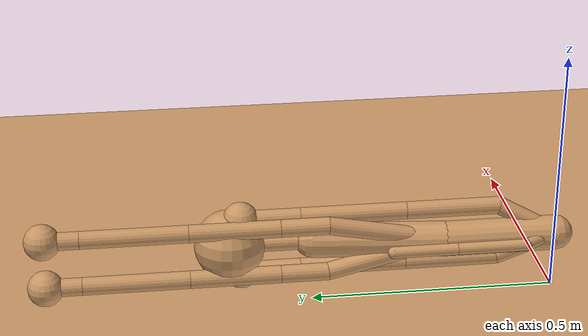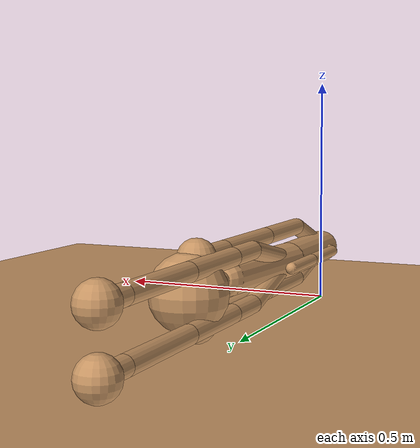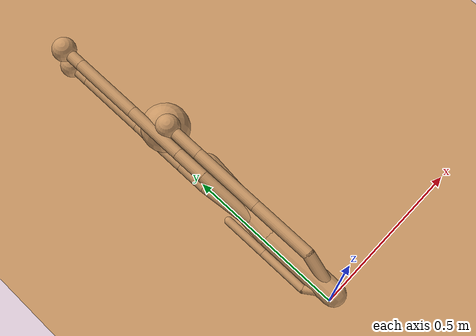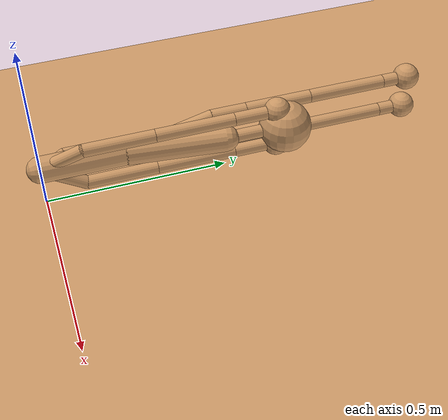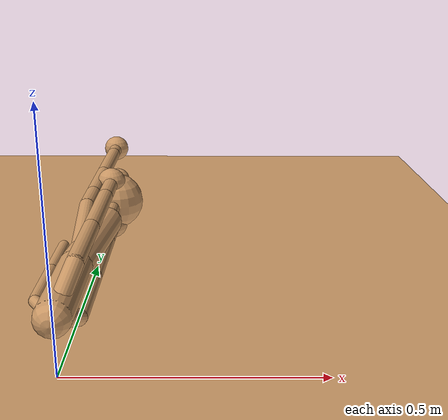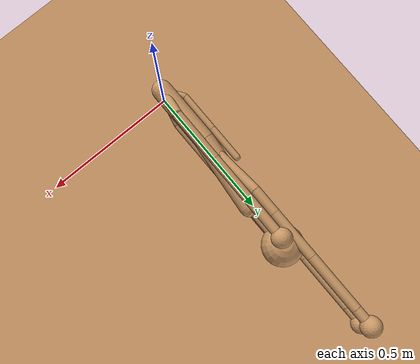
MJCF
<mujoco model="dog">
    <compiler angle="degree" inertiafromgeom="true" />
    <option iterations="50" solver="PGS" timestep="0.002" />

    <default>
        <joint armature="0.01" damping="20" limited="true" stiffness="200" type="hinge" />
        <geom conaffinity="1" condim="3" contype="1" density="1" rgba=".8 .6 .4 1" />
        <motor ctrllimited="true" ctrlrange="-180 180" />
    </default>

    <asset>
        <texture builtin="checker" height="512" name="gridtexture" rgb1="1 0 0" rgb2="0 1 0" type="2d" width="512" />
        <material name="grid" reflectance="0.2" texrepeat="1 1" texture="gridtexture" />
    </asset>

    <worldbody>
        <geom conaffinity="1" material="grid" name="floor" size="1.8 1.8 0.00012" type="plane" />
        <body name="Hips" pos="0.0 0.0 0.12">
            <freejoint name="root" />
            <body name="Spine" pos="0.0 0.0 0.0">
                <joint axis="1 0 0" name="spine_x" range="-180 180" />
                <joint axis="0 1 0" name="spine_y" range="-180 180" />
                <joint axis="0 0 1" name="spine_z" range="-180 180" />
                <geom fromto="0.0 0.0 0.0 0.0 0.228 0.0" size="0.036000000000000004" type="capsule" />

                <body name="Spine1" pos="0.0 0.228 0.0">
                    <joint axis="1 0 0" name="spine1_x" range="-180 180" />
                    <joint axis="0 1 0" name="spine1_y" range="-180 180" />
                    <joint axis="0 0 1" name="spine1_z" range="-180 180" />
                    <geom fromto="0.0 0.0 0.0 0.0276 0.2688 0.0" size="0.036000000000000004" type="capsule" />

                    <body name="Neck" pos="0.0276 0.2688 0.0">
                        <joint axis="1 0 0" name="neck_x" range="-180 180" />
                        <joint axis="0 1 0" name="neck_y" range="-180 180" />
                        <joint axis="0 0 1" name="neck_z" range="-180 180" />
                        <geom fromto="0.0 0.0 0.0 0.0 0.168 0.0" size="0.018000000000000002" type="capsule" />

                        <body name="Head" pos="0.0 0.168 0.0">
                            <joint axis="1 0 0" name="head_x" range="-180 180" />
                            <joint axis="0 1 0" name="head_y" range="-180 180" />
                            <joint axis="0 0 1" name="head_z" range="-180 180" />
                            <geom size="0.07200000000000001" type="sphere" />
                        </body>
                    </body>

                    <geom fromto="0.0 0.0 0.0 -0.013200000000000002 0.24120000000000003 0.0516" size="0.018000000000000002" type="capsule" />
                    <body name="LeftShoulder" pos="-0.013200000000000002 0.24120000000000003 0.0516">
                        <joint axis="1 0 0" name="leftshoulder_x" range="-180 180" />
                        <joint axis="0 1 0" name="leftshoulder_y" range="-180 180" />
                        <joint axis="0 0 1" name="leftshoulder_z" range="-180 180" />
                        <geom fromto="0.0 0.0 0.0 0.0 0.096 0.0" size="0.018000000000000002" type="capsule" />

                        <body name="LeftArm" pos="0.0 0.096 0.0">
                            <joint axis="1 0 0" name="leftarm_x" range="-180 180" />
                            <joint axis="0 1 0" name="leftarm_y" range="-180 180" />
                            <joint axis="0 0 1" name="leftarm_z" range="-180 180" />
                            <geom fromto="0.0 0.0 0.0 0.0 0.1824 0.0" size="0.018000000000000002" type="capsule" />

                            <body name="LeftForeArm" pos="0.0 0.1824 0.0">
                                <joint axis="1 0 0" name="leftforearm_x" range="-180 180" />
                                <joint axis="0 1 0" name="leftforearm_y" range="-180 180" />
                                <joint axis="0 0 1" name="leftforearm_z" range="-180 180" />
                                <geom fromto="0.0 0.0 0.0 0.0 0.2136 0.0" size="0.018000000000000002" type="capsule" />

                                <body name="LeftHand" pos="0.0 0.2136 0.0">
                                    <joint axis="1 0 0" name="lefthand_x" range="-180 180" />
                                    <joint axis="0 1 0" name="lefthand_y" range="-180 180" />
                                    <joint axis="0 0 1" name="lefthand_z" range="-180 180" />
                                    <geom fromto="0.0 0.0 0.0 0.0 0.0864 0.0" size="0.018000000000000002" type="capsule" />
                                    <geom pos="0.0 0.07200000000000001 0.0" size="0.036000000000000004" type="sphere" />
                                </body>
                            </body>
                        </body>
                    </body>

                    <geom fromto="0.0 0.0 0.0 -0.013200000000000002 0.24120000000000003 -0.0516" size="0.018000000000000002" type="capsule" />
                    <body name="RightShoulder" pos="-0.013200000000000002 0.24120000000000003 -0.0516">
                        <joint axis="1 0 0" name="rightshoulder_x" range="-180 180" />
                        <joint axis="0 1 0" name="rightshoulder_y" range="-180 180" />
                        <joint axis="0 0 1" name="rightshoulder_z" range="-180 180" />
                        <geom fromto="0.0 0.0 0.0 0.0 0.096 0.0" size="0.018000000000000002" type="capsule" />

                        <body name="RightArm" pos="0.0 0.096 0.0">
                            <joint axis="1 0 0" name="rightarm_x" range="-180 180" />
                            <joint axis="0 1 0" name="rightarm_y" range="-180 180" />
                            <joint axis="0 0 1" name="rightarm_z" range="-180 180" />
                            <geom fromto="0.0 0.0 0.0 0.0 0.1824 0.0" size="0.018000000000000002" type="capsule" />

                            <body name="RightForeArm" pos="0.0 0.1824 0.0">
                                <joint axis="1 0 0" name="rightforearm_x" range="-180 180" />
                                <joint axis="0 1 0" name="rightforearm_y" range="-180 180" />
                                <joint axis="0 0 1" name="rightforearm_z" range="-180 180" />
                                <geom fromto="0.0 0.0 0.0 0.0 0.2136 0.0" size="0.018000000000000002" type="capsule" />

                                <body name="RightHand" pos="0.0 0.2136 0.0">
                                    <joint axis="1 0 0" name="righthand_x" range="-180 180" />
                                    <joint axis="0 1 0" name="righthand_y" range="-180 180" />
                                    <joint axis="0 0 1" name="righthand_z" range="-180 180" />
                                    <geom fromto="0.0 0.0 0.0 0.0 0.0864 0.0" size="0.018000000000000002" type="capsule" />
                                    <geom pos="0.0 0.07200000000000001 0.0" size="0.036000000000000004" type="sphere" />
                                </body>
                            </body>
                        </body>
                    </body>
                </body>
            </body>

            <geom fromto="0.0 0.0 0.0 0.0228 0.114 0.0576" size="0.018000000000000002" type="capsule" />
            <body name="LeftUpLeg" pos="0.0228 0.114 0.0576">
                <joint axis="1 0 0" name="leftupleg_x" range="-180 180" />
                <joint axis="0 1 0" name="leftupleg_y" range="-180 180" />
                <joint axis="0 0 1" name="leftupleg_z" range="-180 180" />
                <geom fromto="0.0 0.0 0.0 0.0 0.192 0.0" size="0.018000000000000002" type="capsule" />

                <body name="LeftLeg" pos="0.0 0.192 0.0">
                    <joint axis="1 0 0" name="leftleg_x" range="-180 180" />
                    <joint axis="0 1 0" name="leftleg_y" range="-180 180" />
                    <joint axis="0 0 1" name="leftleg_z" range="-180 180" />
                    <geom fromto="0.0 0.0 0.0 0.0 0.216 0.0" size="0.018000000000000002" type="capsule" />

                    <body name="LeftFoot" pos="0.0 0.216 0.0">
                        <joint axis="1 0 0" name="leftfoot_x" range="-180 180" />
                        <joint axis="0 1 0" name="leftfoot_y" range="-180 180" />
                        <joint axis="0 0 1" name="leftfoot_z" range="-180 180" />
                        <geom fromto="0.0 0.0 0.0 0.0 0.12960000000000002 0.0" size="0.018000000000000002" type="capsule" />
                        <geom pos="0.0 0.12 0.0" size="0.036000000000000004" type="sphere" />
                    </body>
                </body>
            </body>

            <geom fromto="0.0 0.0 0.0 0.0228 0.114 -0.0576" size="0.018000000000000002" type="capsule" />
            <body name="RightUpLeg" pos="0.0228 0.114 -0.0576">
                <joint axis="1 0 0" name="rightupleg_x" range="-180 180" />
                <joint axis="0 1 0" name="rightupleg_y" range="-180 180" />
                <joint axis="0 0 1" name="rightupleg_z" range="-180 180" />
                <geom fromto="0.0 0.0 0.0 0.0 0.192 0.0" size="0.018000000000000002" type="capsule" />

                <body name="RightLeg" pos="0.0 0.192 0.0">
                    <joint axis="1 0 0" name="rightleg_x" range="-180 180" />
                    <joint axis="0 1 0" name="rightleg_y" range="-180 180" />
                    <joint axis="0 0 1" name="rightleg_z" range="-180 180" />
                    <geom fromto="0.0 0.0 0.0 0.0 0.216 0.0" size="0.018000000000000002" type="capsule" />

                    <body name="RightFoot" pos="0.0 0.216 0.0">
                        <joint axis="1 0 0" name="rightfoot_x" range="-180 180" />
                        <joint axis="0 1 0" name="rightfoot_y" range="-180 180" />
                        <joint axis="0 0 1" name="rightfoot_z" range="-180 180" />
                        <geom fromto="0.0 0.0 0.0 0.0 0.12960000000000002 0.0" size="0.018000000000000002" type="capsule" />
                        <geom pos="0.0 0.12 0.0" size="0.036000000000000004" type="sphere" />
                    </body>
                </body>
            </body>

            <geom fromto="0.0 0.0 0.0 -0.0468 0.0684 0.0" size="0.012" type="capsule" />
            <body name="Tail" pos="-0.0468 0.0684 0.0">
                <joint axis="1 0 0" name="tail_x" range="-180 180" />
                <joint axis="0 1 0" name="tail_y" range="-180 180" />
                <joint axis="0 0 1" name="tail_z" range="-180 180" />
                <geom fromto="0.0 0.0 0.0 0.0 0.14400000000000002 0.0" size="0.012" type="capsule" />

                <body name="Tail1" pos="0.0 0.14400000000000002 0.0">
                    <joint axis="1 0 0" name="tail1_x" range="-180 180" />
                    <joint axis="0 1 0" name="tail1_y" range="-180 180" />
                    <joint axis="0 0 1" name="tail1_z" range="-180 180" />
                    <geom fromto="0.0 0.0 0.0 0.0 0.12960000000000002 0.0" size="0.012" type="capsule" />
                </body>
            </body>
        </body>
    </worldbody>

    <actuator>
        <motor gear="456" joint="spine_x" name="spine_x" />
        <motor gear="456" joint="spine_y" name="spine_y" />
        <motor gear="456" joint="spine_z" name="spine_z" />
        <motor gear="456" joint="spine1_x" name="spine1_x" />
        <motor gear="456" joint="spine1_y" name="spine1_y" />
        <motor gear="456" joint="spine1_z" name="spine1_z" />
        <motor gear="456" joint="neck_x" name="neck_x" />
        <motor gear="456" joint="neck_y" name="neck_y" />
        <motor gear="456" joint="neck_z" name="neck_z" />
        <motor gear="456" joint="head_x" name="head_x" />
        <motor gear="456" joint="head_y" name="head_y" />
        <motor gear="456" joint="head_z" name="head_z" />
        <motor gear="456" joint="leftshoulder_x" name="leftshoulder_x" />
        <motor gear="456" joint="leftshoulder_y" name="leftshoulder_y" />
        <motor gear="456" joint="leftshoulder_z" name="leftshoulder_z" />
        <motor gear="456" joint="leftarm_x" name="leftarm_x" />
        <motor gear="456" joint="leftarm_y" name="leftarm_y" />
        <motor gear="456" joint="leftarm_z" name="leftarm_z" />
        <motor gear="456" joint="leftforearm_x" name="leftforearm_x" />
        <motor gear="456" joint="leftforearm_y" name="leftforearm_y" />
        <motor gear="456" joint="leftforearm_z" name="leftforearm_z" />
        <motor gear="456" joint="lefthand_x" name="lefthand_x" />
        <motor gear="456" joint="lefthand_y" name="lefthand_y" />
        <motor gear="456" joint="lefthand_z" name="lefthand_z" />
        <motor gear="456" joint="rightshoulder_x" name="rightshoulder_x" />
        <motor gear="456" joint="rightshoulder_y" name="rightshoulder_y" />
        <motor gear="456" joint="rightshoulder_z" name="rightshoulder_z" />
        <motor gear="456" joint="rightarm_x" name="rightarm_x" />
        <motor gear="456" joint="rightarm_y" name="rightarm_y" />
        <motor gear="456" joint="rightarm_z" name="rightarm_z" />
        <motor gear="456" joint="rightforearm_x" name="rightforearm_x" />
        <motor gear="456" joint="rightforearm_y" name="rightforearm_y" />
        <motor gear="456" joint="rightforearm_z" name="rightforearm_z" />
        <motor gear="456" joint="righthand_x" name="righthand_x" />
        <motor gear="456" joint="righthand_y" name="righthand_y" />
        <motor gear="456" joint="righthand_z" name="righthand_z" />
        <motor gear="456" joint="leftupleg_x" name="leftupleg_x" />
        <motor gear="456" joint="leftupleg_y" name="leftupleg_y" />
        <motor gear="456" joint="leftupleg_z" name="leftupleg_z" />
        <motor gear="456" joint="leftleg_x" name="leftleg_x" />
        <motor gear="456" joint="leftleg_y" name="leftleg_y" />
        <motor gear="456" joint="leftleg_z" name="leftleg_z" />
        <motor gear="456" joint="leftfoot_x" name="leftfoot_x" />
        <motor gear="456" joint="leftfoot_y" name="leftfoot_y" />
        <motor gear="456" joint="leftfoot_z" name="leftfoot_z" />
        <motor gear="456" joint="rightupleg_x" name="rightupleg_x" />
        <motor gear="456" joint="rightupleg_y" name="rightupleg_y" />
        <motor gear="456" joint="rightupleg_z" name="rightupleg_z" />
        <motor gear="456" joint="rightleg_x" name="rightleg_x" />
        <motor gear="456" joint="rightleg_y" name="rightleg_y" />
        <motor gear="456" joint="rightleg_z" name="rightleg_z" />
        <motor gear="456" joint="rightfoot_x" name="rightfoot_x" />
        <motor gear="456" joint="rightfoot_y" name="rightfoot_y" />
        <motor gear="456" joint="rightfoot_z" name="rightfoot_z" />
        <motor gear="456" joint="tail_x" name="tail_x" />
        <motor gear="456" joint="tail_y" name="tail_y" />
        <motor gear="456" joint="tail_z" name="tail_z" />
        <motor gear="456" joint="tail1_x" name="tail1_x" />
        <motor gear="456" joint="tail1_y" name="tail1_y" />
        <motor gear="456" joint="tail1_z" name="tail1_z" />
    </actuator>
</mujoco>
